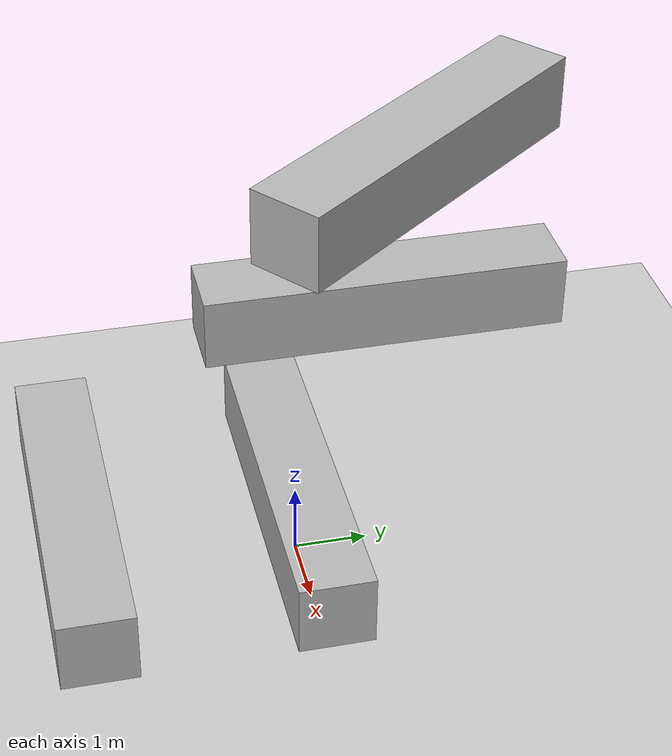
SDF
<?xml version="1.0" ?>
<sdf version="1.5">
  <world name="default">
    <include>
      <uri>model://sun</uri>
    </include>
    <model name="ground_plane">
      <static>true</static>
      <link name="link">
        <collision name="collision">
          <geometry>
            <plane>
              <normal>0 0 1</normal>
              <size>100 100</size>
            </plane>
          </geometry>
          <surface>
            <contact>
               <collide_bitmask>0xff</collide_bitmask>
            </contact>
            <friction>
              <ode>
                <mu>100</mu>
                <mu2>50</mu2>
              </ode>
            </friction>
          </surface>
        </collision>
        <visual name="visual">
          <cast_shadows>false</cast_shadows>
          <geometry>
            <plane>
              <normal>0 0 1</normal>
              <size>100 100</size>
            </plane>
          </geometry>
          <material>
            <script>
              <uri>file://media/materials/scripts/gazebo.material</uri>
              <name>Gazebo/Grey</name>
            </script>
          </material>
        </visual>
      </link>
    </model>

    <model name="box1">
      <link name="link">
        <pose>0 0 1.0 0 0 0</pose>
        <self_collide>1</self_collide>
        <inertial>
          <mass>1</mass>
          <inertia>
            <ixx>0.166667</ixx>
            <ixy>0</ixy>
            <ixz>0</ixz>
            <iyy>2.166667</iyy>
            <iyz>0</iyz>
            <izz>2.166667</izz>
          </inertia>
        </inertial>
        <collision name="collision">
          <geometry>
            <box>
              <size>5 1 1</size>
            </box>
          </geometry>
          <surface>
            <contact>
              <collide_bitmask>0x01</collide_bitmask>
            </contact>
          </surface>
        </collision>
        <visual name="visual">
          <geometry>
            <box>
              <size>5 1 1</size>
            </box>
          </geometry>
        </visual>
      </link>

      <link name="link1">
        <pose>-1.5 1.5 3.0 0 0 1.57</pose>
        <self_collide>1</self_collide>
        <inertial>
          <mass>1</mass>
          <inertia>
            <ixx>0.166667</ixx>
            <ixy>0</ixy>
            <ixz>0</ixz>
            <iyy>2.166667</iyy>
            <iyz>0</iyz>
            <izz>2.166667</izz>
          </inertia>
        </inertial>
        <collision name="collision">
          <geometry>
            <box>
              <size>5 1 1</size>
            </box>
          </geometry>
          <surface>
            <contact>
              <collide_bitmask>0x02</collide_bitmask>
            </contact>
          </surface>
        </collision>
        <visual name="visual">
          <geometry>
            <box>
              <size>5 1 1</size>
            </box>
          </geometry>
        </visual>
      </link>

      <link name="link2">
        <pose>0 1.5 6.0 0 0 2.24</pose>
        <self_collide>1</self_collide>
        <inertial>
          <mass>1</mass>
          <inertia>
            <ixx>0.166667</ixx>
            <ixy>0</ixy>
            <ixz>0</ixz>
            <iyy>2.166667</iyy>
            <iyz>0</iyz>
            <izz>2.166667</izz>
          </inertia>
        </inertial>
        <collision name="collision">
          <geometry>
            <box>
              <size>5 1 1</size>
            </box>
          </geometry>
          <surface>
            <contact>
              <collide_bitmask>0x03</collide_bitmask>
            </contact>
          </surface>
        </collision>
        <visual name="visual">
          <geometry>
            <box>
              <size>5 1 1</size>
            </box>
          </geometry>
        </visual>
      </link>
      <link name="link3">
        <pose>0 -3 1.0 0 0 0</pose>
        <self_collide>1</self_collide>
        <inertial>
          <mass>1</mass>
          <inertia>
            <ixx>0.166667</ixx>
            <ixy>0</ixy>
            <ixz>0</ixz>
            <iyy>2.166667</iyy>
            <iyz>0</iyz>
            <izz>2.166667</izz>
          </inertia>
        </inertial>
        <collision name="collision">
          <geometry>
            <box>
              <size>5 1 1</size>
            </box>
          </geometry>
          <surface>
            <contact>
              <collide_bitmask>0x10000</collide_bitmask>
            </contact>
          </surface>
        </collision>
        <visual name="visual">
          <geometry>
            <box>
              <size>5 1 1</size>
            </box>
          </geometry>
        </visual>
      </link>
    </model>

  </world>
</sdf>
